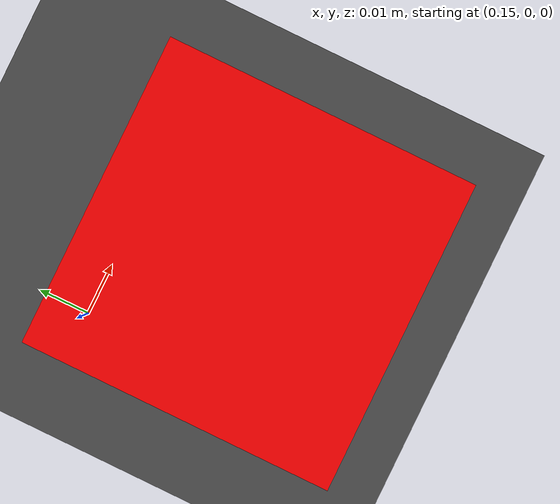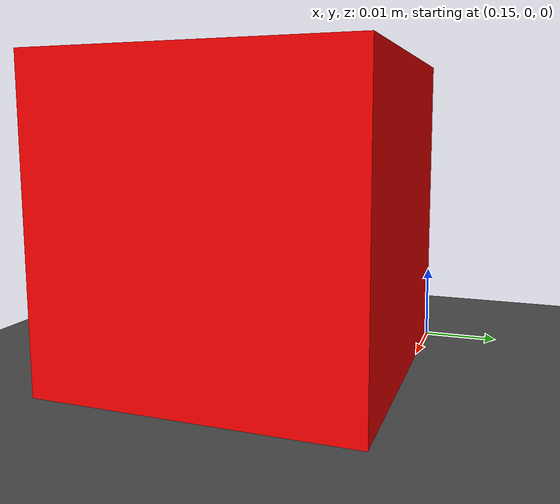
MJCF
<?xml version='1.0' encoding='utf-8'?>
<mujoco model="scene">
         <worldbody>
            <light diffuse="0.8 0.8 0.8" specular="0.2 0.2 0.2" pos="0 0 4" dir="0 0 -1" cutoff="180" castshadow="false" directional="true" />

            <geom type="plane" size="5 5 0.1" rgba="0.3 0.3 0.3 1" contype="1" conaffinity="1" friction="1 0.005 0.0001" />

            <geom name="tiny_cube" type="box" size="0.02 0.02 0.02" pos="0.17 -0.02 0.02" rgba="1 0 0 1" mass="0.001" contype="1" conaffinity="1" />

            <camera name="camera_239222300412" pos="0.44533796 -0.50380891 0.45979518" mode="fixed" resolution="640 480" sensorsize="1 1" focal="0.598321533203125 0.796903419494629" xyaxes="0.93522115 0.34629985 0.07374150  -0.28611778 0.61649309 0.73353452" />

        <camera name="camera_235422302222" pos="0.43101396 -0.48361747 0.44284123" mode="fixed" resolution="640 480" sensorsize="1 1" focal="0.5986385822296143 0.7971280415852865" xyaxes="0.91677823 0.39938844 -0.00256059  -0.26964994 0.62367331 0.73370328" /></worldbody>
        </mujoco>
